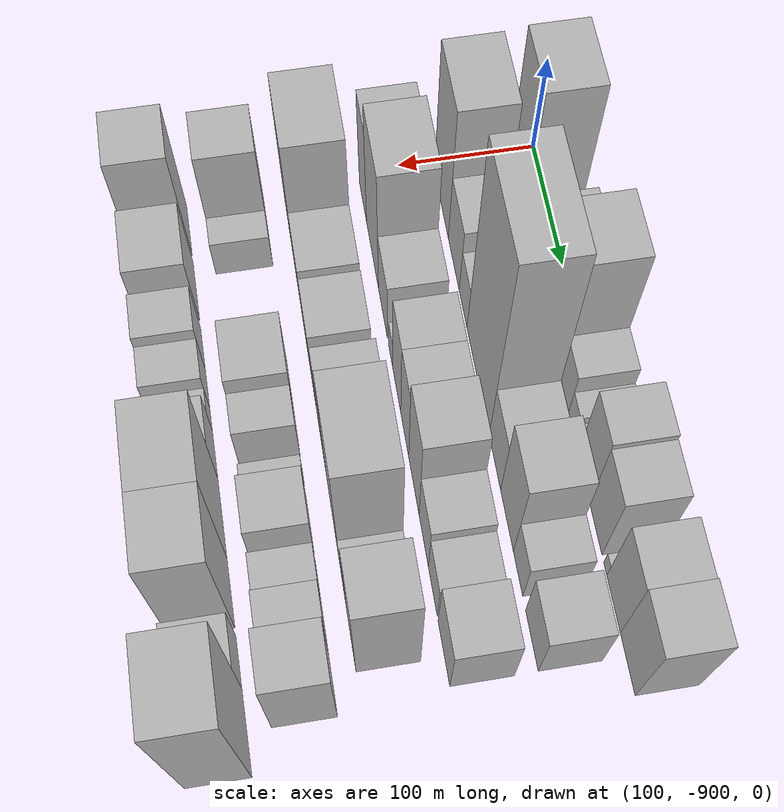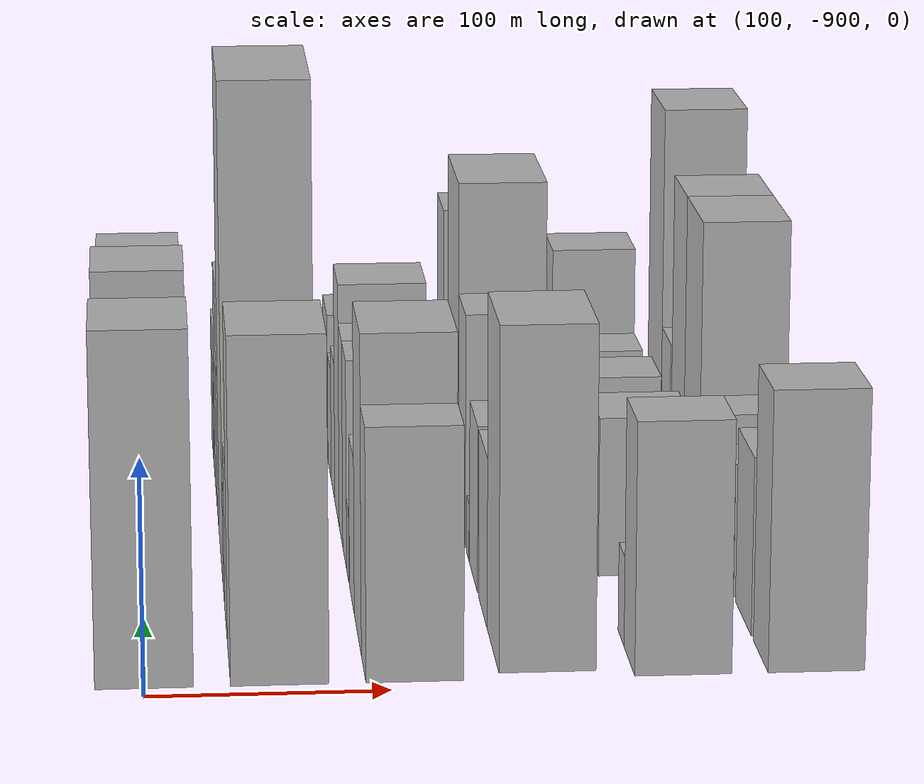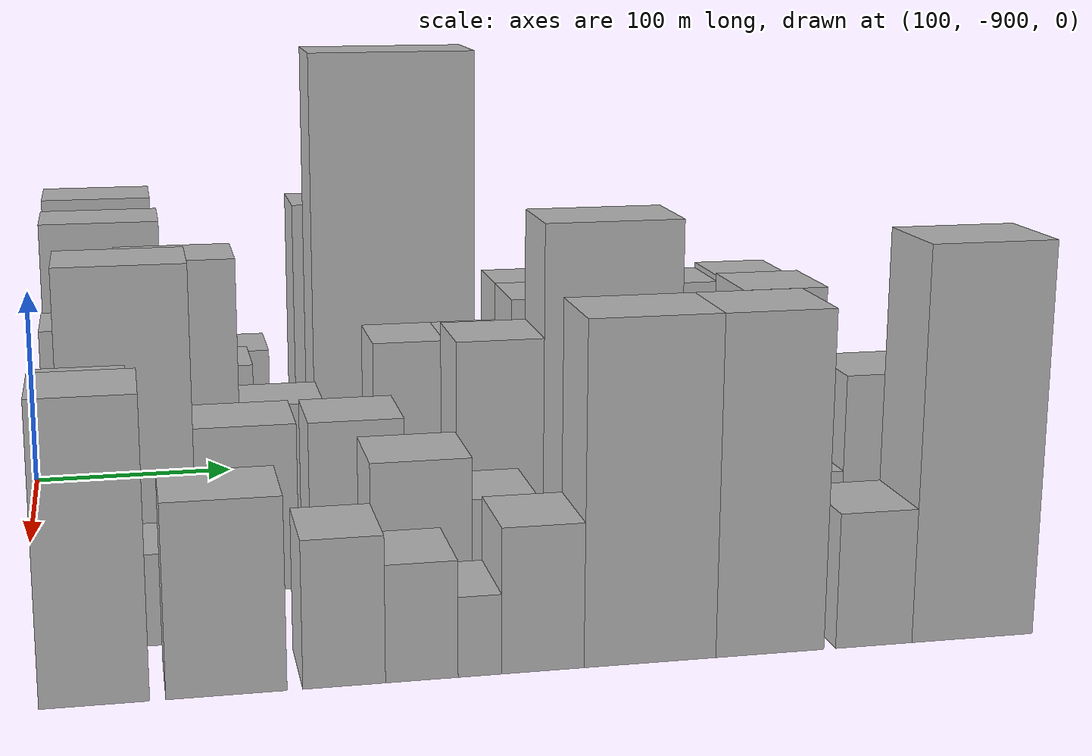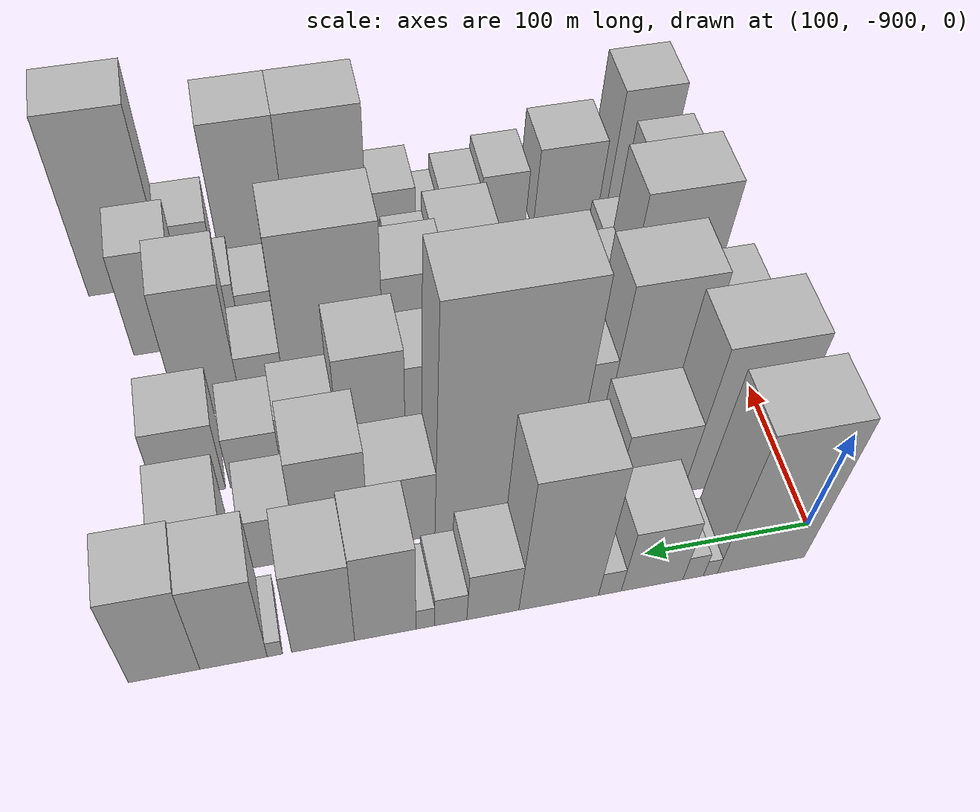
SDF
<sdf version="1.6">
 <world name="default">
  <model name="building_1">
   <static>1</static>
   <pose>100.0000 -863.5592 0 0.000000 0.000000 0.000000</pose>
   <link name="link">
    <pose>0 0 75.00 0 0 0</pose>
    <collision name="collision"><geometry><box><size>40.0000 52.8815 150.0000</size></box></geometry></collision>
    <visual name="visual">
     <cast_shadows>0</cast_shadows>
     <geometry><box><size>40.0000 52.8815 150.0000</size></box></geometry>
     <material>
      <script>
       <uri>model://HANNAS_wall/materials/scripts</uri>
       <uri>model://HANNAS_wall/materials/textures</uri>
       <name>vrc/HANNAS_wall</name>
      </script>
     </material>
    </visual>
   </link>
  </model>
  <model name="building_2">
   <static>1</static>
   <pose>100.0000 -832.8739 0 0.000000 0.000000 0.000000</pose>
   <link name="link">
    <pose>0 0 9.00 0 0 0</pose>
    <collision name="collision"><geometry><box><size>40.0000 8.4891 18.0000</size></box></geometry></collision>
    <visual name="visual">
     <cast_shadows>0</cast_shadows>
     <geometry><box><size>40.0000 8.4891 18.0000</size></box></geometry>
     <material>
      <script>
       <uri>model://HANNAS_wall/materials/scripts</uri>
       <uri>model://HANNAS_wall/materials/textures</uri>
       <name>vrc/HANNAS_wall</name>
      </script>
     </material>
    </visual>
   </link>
  </model>
  <model name="building_3">
   <static>1</static>
   <pose>100.0000 -822.4442 0 0.000000 0.000000 0.000000</pose>
   <link name="link">
    <pose>0 0 13.50 0 0 0</pose>
    <collision name="collision"><geometry><box><size>40.0000 12.3704 27.0000</size></box></geometry></collision>
    <visual name="visual">
     <cast_shadows>0</cast_shadows>
     <geometry><box><size>40.0000 12.3704 27.0000</size></box></geometry>
     <material>
      <script>
       <uri>model://HANNAS_wall/materials/scripts</uri>
       <uri>model://HANNAS_wall/materials/textures</uri>
       <name>vrc/HANNAS_wall</name>
      </script>
     </material>
    </visual>
   </link>
  </model>
  <model name="building_4">
   <static>1</static>
   <pose>100.0000 -797.8534 0 0.000000 0.000000 0.000000</pose>
   <link name="link">
    <pose>0 0 34.50 0 0 0</pose>
    <collision name="collision"><geometry><box><size>40.0000 36.8112 69.0000</size></box></geometry></collision>
    <visual name="visual">
     <cast_shadows>0</cast_shadows>
     <geometry><box><size>40.0000 36.8112 69.0000</size></box></geometry>
     <material>
      <script>
       <uri>model://HANNAS_wall/materials/scripts</uri>
       <uri>model://HANNAS_wall/materials/textures</uri>
       <name>vrc/HANNAS_wall</name>
      </script>
     </material>
    </visual>
   </link>
  </model>
  <model name="building_5">
   <static>1</static>
   <pose>100.0000 -772.7237 0 0.000000 0.000000 0.000000</pose>
   <link name="link">
    <pose>0 0 13.50 0 0 0</pose>
    <collision name="collision"><geometry><box><size>40.0000 13.4483 27.0000</size></box></geometry></collision>
    <visual name="visual">
     <cast_shadows>0</cast_shadows>
     <geometry><box><size>40.0000 13.4483 27.0000</size></box></geometry>
     <material>
      <script>
       <uri>model://HANNAS_wall/materials/scripts</uri>
       <uri>model://HANNAS_wall/materials/textures</uri>
       <name>vrc/HANNAS_wall</name>
      </script>
     </material>
    </visual>
   </link>
  </model>
  <model name="building_6">
   <static>1</static>
   <pose>100.0000 -742.6112 0 0.000000 0.000000 0.000000</pose>
   <link name="link">
    <pose>0 0 72.00 0 0 0</pose>
    <collision name="collision"><geometry><box><size>40.0000 46.7767 144.0000</size></box></geometry></collision>
    <visual name="visual">
     <cast_shadows>0</cast_shadows>
     <geometry><box><size>40.0000 46.7767 144.0000</size></box></geometry>
     <material>
      <script>
       <uri>model://HANNAS_wall/materials/scripts</uri>
       <uri>model://HANNAS_wall/materials/textures</uri>
       <name>vrc/HANNAS_wall</name>
      </script>
     </material>
    </visual>
   </link>
  </model>
  <model name="building_7">
   <static>1</static>
   <pose>100.0000 -704.1414 0 0.000000 0.000000 0.000000</pose>
   <link name="link">
    <pose>0 0 27.00 0 0 0</pose>
    <collision name="collision"><geometry><box><size>40.0000 30.1628 54.0000</size></box></geometry></collision>
    <visual name="visual">
     <cast_shadows>0</cast_shadows>
     <geometry><box><size>40.0000 30.1628 54.0000</size></box></geometry>
     <material>
      <script>
       <uri>model://HANNAS_wall/materials/scripts</uri>
       <uri>model://HANNAS_wall/materials/textures</uri>
       <name>vrc/HANNAS_wall</name>
      </script>
     </material>
    </visual>
   </link>
  </model>
  <model name="building_8">
   <static>1</static>
   <pose>100.0000 -679.7292 0 0.000000 0.000000 0.000000</pose>
   <link name="link">
    <pose>0 0 16.50 0 0 0</pose>
    <collision name="collision"><geometry><box><size>40.0000 18.6615 33.0000</size></box></geometry></collision>
    <visual name="visual">
     <cast_shadows>0</cast_shadows>
     <geometry><box><size>40.0000 18.6615 33.0000</size></box></geometry>
     <material>
      <script>
       <uri>model://HANNAS_wall/materials/scripts</uri>
       <uri>model://HANNAS_wall/materials/textures</uri>
       <name>vrc/HANNAS_wall</name>
      </script>
     </material>
    </visual>
   </link>
  </model>
  <model name="building_9">
   <static>1</static>
   <pose>100.0000 -665.0958 0 0.000000 0.000000 0.000000</pose>
   <link name="link">
    <pose>0 0 12.00 0 0 0</pose>
    <collision name="collision"><geometry><box><size>40.0000 10.6054 24.0000</size></box></geometry></collision>
    <visual name="visual">
     <cast_shadows>0</cast_shadows>
     <geometry><box><size>40.0000 10.6054 24.0000</size></box></geometry>
     <material>
      <script>
       <uri>model://HANNAS_wall/materials/scripts</uri>
       <uri>model://HANNAS_wall/materials/textures</uri>
       <name>vrc/HANNAS_wall</name>
      </script>
     </material>
    </visual>
   </link>
  </model>
  <model name="building_10">
   <static>1</static>
   <pose>100.0000 -642.4556 0 0.000000 0.000000 0.000000</pose>
   <link name="link">
    <pose>0 0 49.50 0 0 0</pose>
    <collision name="collision"><geometry><box><size>40.0000 34.6750 99.0000</size></box></geometry></collision>
    <visual name="visual">
     <cast_shadows>0</cast_shadows>
     <geometry><box><size>40.0000 34.6750 99.0000</size></box></geometry>
     <material>
      <script>
       <uri>model://HANNAS_wall/materials/scripts</uri>
       <uri>model://HANNAS_wall/materials/textures</uri>
       <name>vrc/HANNAS_wall</name>
      </script>
     </material>
    </visual>
   </link>
  </model>
  <model name="building_11">
   <static>1</static>
   <pose>100.0000 -607.3958 0 0.000000 0.000000 0.000000</pose>
   <link name="link">
    <pose>0 0 46.50 0 0 0</pose>
    <collision name="collision"><geometry><box><size>40.0000 35.4446 93.0000</size></box></geometry></collision>
    <visual name="visual">
     <cast_shadows>0</cast_shadows>
     <geometry><box><size>40.0000 35.4446 93.0000</size></box></geometry>
     <material>
      <script>
       <uri>model://HANNAS_wall/materials/scripts</uri>
       <uri>model://HANNAS_wall/materials/textures</uri>
       <name>vrc/HANNAS_wall</name>
      </script>
     </material>
    </visual>
   </link>
  </model>
  <model name="building_12">
   <static>1</static>
   <pose>100.0000 -580.3775 0 0.000000 0.000000 0.000000</pose>
   <link name="link">
    <pose>0 0 9.00 0 0 0</pose>
    <collision name="collision"><geometry><box><size>40.0000 8.5919 18.0000</size></box></geometry></collision>
    <visual name="visual">
     <cast_shadows>0</cast_shadows>
     <geometry><box><size>40.0000 8.5919 18.0000</size></box></geometry>
     <material>
      <script>
       <uri>model://HANNAS_wall/materials/scripts</uri>
       <uri>model://HANNAS_wall/materials/textures</uri>
       <name>vrc/HANNAS_wall</name>
      </script>
     </material>
    </visual>
   </link>
  </model>
  <model name="building_13">
   <static>1</static>
   <pose>100.0000 -557.4880 0 0.000000 0.000000 0.000000</pose>
   <link name="link">
    <pose>0 0 48.00 0 0 0</pose>
    <collision name="collision"><geometry><box><size>40.0000 37.1872 96.0000</size></box></geometry></collision>
    <visual name="visual">
     <cast_shadows>0</cast_shadows>
     <geometry><box><size>40.0000 37.1872 96.0000</size></box></geometry>
     <material>
      <script>
       <uri>model://HANNAS_wall/materials/scripts</uri>
       <uri>model://HANNAS_wall/materials/textures</uri>
       <name>vrc/HANNAS_wall</name>
      </script>
     </material>
    </visual>
   </link>
  </model>
  <model name="building_14">
   <static>1</static>
   <pose>100.0000 -519.3972 0 0.000000 0.000000 0.000000</pose>
   <link name="link">
    <pose>0 0 49.50 0 0 0</pose>
    <collision name="collision"><geometry><box><size>40.0000 38.9944 99.0000</size></box></geometry></collision>
    <visual name="visual">
     <cast_shadows>0</cast_shadows>
     <geometry><box><size>40.0000 38.9944 99.0000</size></box></geometry>
     <material>
      <script>
       <uri>model://HANNAS_wall/materials/scripts</uri>
       <uri>model://HANNAS_wall/materials/textures</uri>
       <name>vrc/HANNAS_wall</name>
      </script>
     </material>
    </visual>
   </link>
  </model>
  <model name="building_54">
   <static>1</static>
   <pose>155.0000 -862.2005 0 0.000000 0.000000 0.000000</pose>
   <link name="link">
    <pose>0 0 73.50 0 0 0</pose>
    <collision name="collision"><geometry><box><size>40.0000 55.5990 147.0000</size></box></geometry></collision>
    <visual name="visual">
     <cast_shadows>0</cast_shadows>
     <geometry><box><size>40.0000 55.5990 147.0000</size></box></geometry>
     <material>
      <script>
       <uri>model://HANNAS_wall/materials/scripts</uri>
       <uri>model://HANNAS_wall/materials/textures</uri>
       <name>vrc/HANNAS_wall</name>
      </script>
     </material>
    </visual>
   </link>
  </model>
  <model name="building_55">
   <static>1</static>
   <pose>155.0000 -813.0366 0 0.000000 0.000000 0.000000</pose>
   <link name="link">
    <pose>0 0 37.50 0 0 0</pose>
    <collision name="collision"><geometry><box><size>40.0000 42.7287 75.0000</size></box></geometry></collision>
    <visual name="visual">
     <cast_shadows>0</cast_shadows>
     <geometry><box><size>40.0000 42.7287 75.0000</size></box></geometry>
     <material>
      <script>
       <uri>model://HANNAS_wall/materials/scripts</uri>
       <uri>model://HANNAS_wall/materials/textures</uri>
       <name>vrc/HANNAS_wall</name>
      </script>
     </material>
    </visual>
   </link>
  </model>
  <model name="building_56">
   <static>1</static>
   <pose>155.0000 -776.8651 0 0.000000 0.000000 0.000000</pose>
   <link name="link">
    <pose>0 0 25.50 0 0 0</pose>
    <collision name="collision"><geometry><box><size>40.0000 29.6142 51.0000</size></box></geometry></collision>
    <visual name="visual">
     <cast_shadows>0</cast_shadows>
     <geometry><box><size>40.0000 29.6142 51.0000</size></box></geometry>
     <material>
      <script>
       <uri>model://HANNAS_wall/materials/scripts</uri>
       <uri>model://HANNAS_wall/materials/textures</uri>
       <name>vrc/HANNAS_wall</name>
      </script>
     </material>
    </visual>
   </link>
  </model>
  <model name="building_57">
   <static>1</static>
   <pose>155.0000 -722.0040 0 0.000000 0.000000 0.000000</pose>
   <link name="link">
    <pose>0 0 112.50 0 0 0</pose>
    <collision name="collision"><geometry><box><size>40.0000 80.1081 225.0000</size></box></geometry></collision>
    <visual name="visual">
     <cast_shadows>0</cast_shadows>
     <geometry><box><size>40.0000 80.1081 225.0000</size></box></geometry>
     <material>
      <script>
       <uri>model://HANNAS_wall/materials/scripts</uri>
       <uri>model://HANNAS_wall/materials/textures</uri>
       <name>vrc/HANNAS_wall</name>
      </script>
     </material>
    </visual>
   </link>
  </model>
  <model name="building_58">
   <static>1</static>
   <pose>155.0000 -662.4127 0 0.000000 0.000000 0.000000</pose>
   <link name="link">
    <pose>0 0 36.00 0 0 0</pose>
    <collision name="collision"><geometry><box><size>40.0000 39.0746 72.0000</size></box></geometry></collision>
    <visual name="visual">
     <cast_shadows>0</cast_shadows>
     <geometry><box><size>40.0000 39.0746 72.0000</size></box></geometry>
     <material>
      <script>
       <uri>model://HANNAS_wall/materials/scripts</uri>
       <uri>model://HANNAS_wall/materials/textures</uri>
       <name>vrc/HANNAS_wall</name>
      </script>
     </material>
    </visual>
   </link>
  </model>
  <model name="building_59">
   <static>1</static>
   <pose>155.0000 -621.8939 0 0.000000 0.000000 0.000000</pose>
   <link name="link">
    <pose>0 0 54.00 0 0 0</pose>
    <collision name="collision"><geometry><box><size>40.0000 41.9629 108.0000</size></box></geometry></collision>
    <visual name="visual">
     <cast_shadows>0</cast_shadows>
     <geometry><box><size>40.0000 41.9629 108.0000</size></box></geometry>
     <material>
      <script>
       <uri>model://HANNAS_wall/materials/scripts</uri>
       <uri>model://HANNAS_wall/materials/textures</uri>
       <name>vrc/HANNAS_wall</name>
      </script>
     </material>
    </visual>
   </link>
  </model>
  <model name="building_60">
   <static>1</static>
   <pose>155.0000 -586.1257 0 0.000000 0.000000 0.000000</pose>
   <link name="link">
    <pose>0 0 27.00 0 0 0</pose>
    <collision name="collision"><geometry><box><size>40.0000 29.5734 54.0000</size></box></geometry></collision>
    <visual name="visual">
     <cast_shadows>0</cast_shadows>
     <geometry><box><size>40.0000 29.5734 54.0000</size></box></geometry>
     <material>
      <script>
       <uri>model://HANNAS_wall/materials/scripts</uri>
       <uri>model://HANNAS_wall/materials/textures</uri>
       <name>vrc/HANNAS_wall</name>
      </script>
     </material>
    </visual>
   </link>
  </model>
  <model name="building_61">
   <static>1</static>
   <pose>155.0000 -543.0832 0 0.000000 0.000000 0.000000</pose>
   <link name="link">
    <pose>0 0 33.00 0 0 0</pose>
    <collision name="collision"><geometry><box><size>40.0000 38.5117 66.0000</size></box></geometry></collision>
    <visual name="visual">
     <cast_shadows>0</cast_shadows>
     <geometry><box><size>40.0000 38.5117 66.0000</size></box></geometry>
     <material>
      <script>
       <uri>model://HANNAS_wall/materials/scripts</uri>
       <uri>model://HANNAS_wall/materials/textures</uri>
       <name>vrc/HANNAS_wall</name>
      </script>
     </material>
    </visual>
   </link>
  </model>
  <model name="building_105">
   <static>1</static>
   <pose>210.0000 -873.1310 0 0.000000 0.000000 0.000000</pose>
   <link name="link">
    <pose>0 0 54.00 0 0 0</pose>
    <collision name="collision"><geometry><box><size>40.0000 33.7380 108.0000</size></box></geometry></collision>
    <visual name="visual">
     <cast_shadows>0</cast_shadows>
     <geometry><box><size>40.0000 33.7380 108.0000</size></box></geometry>
     <material>
      <script>
       <uri>model://HANNAS_wall/materials/scripts</uri>
       <uri>model://HANNAS_wall/materials/textures</uri>
       <name>vrc/HANNAS_wall</name>
      </script>
     </material>
    </visual>
   </link>
  </model>
  <model name="building_106">
   <static>1</static>
   <pose>210.0000 -829.2123 0 0.000000 0.000000 0.000000</pose>
   <link name="link">
    <pose>0 0 69.00 0 0 0</pose>
    <collision name="collision"><geometry><box><size>40.0000 54.0993 138.0000</size></box></geometry></collision>
    <visual name="visual">
     <cast_shadows>0</cast_shadows>
     <geometry><box><size>40.0000 54.0993 138.0000</size></box></geometry>
     <material>
      <script>
       <uri>model://HANNAS_wall/materials/scripts</uri>
       <uri>model://HANNAS_wall/materials/textures</uri>
       <name>vrc/HANNAS_wall</name>
      </script>
     </material>
    </visual>
   </link>
  </model>
  <model name="building_107">
   <static>1</static>
   <pose>210.0000 -782.6339 0 0.000000 0.000000 0.000000</pose>
   <link name="link">
    <pose>0 0 34.50 0 0 0</pose>
    <collision name="collision"><geometry><box><size>40.0000 39.0576 69.0000</size></box></geometry></collision>
    <visual name="visual">
     <cast_shadows>0</cast_shadows>
     <geometry><box><size>40.0000 39.0576 69.0000</size></box></geometry>
     <material>
      <script>
       <uri>model://HANNAS_wall/materials/scripts</uri>
       <uri>model://HANNAS_wall/materials/textures</uri>
       <name>vrc/HANNAS_wall</name>
      </script>
     </material>
    </visual>
   </link>
  </model>
  <model name="building_108">
   <static>1</static>
   <pose>210.0000 -749.1240 0 0.000000 0.000000 0.000000</pose>
   <link name="link">
    <pose>0 0 16.50 0 0 0</pose>
    <collision name="collision"><geometry><box><size>40.0000 17.9621 33.0000</size></box></geometry></collision>
    <visual name="visual">
     <cast_shadows>0</cast_shadows>
     <geometry><box><size>40.0000 17.9621 33.0000</size></box></geometry>
     <material>
      <script>
       <uri>model://HANNAS_wall/materials/scripts</uri>
       <uri>model://HANNAS_wall/materials/textures</uri>
       <name>vrc/HANNAS_wall</name>
      </script>
     </material>
    </visual>
   </link>
  </model>
  <model name="building_109">
   <static>1</static>
   <pose>210.0000 -723.3912 0 0.000000 0.000000 0.000000</pose>
   <link name="link">
    <pose>0 0 48.00 0 0 0</pose>
    <collision name="collision"><geometry><box><size>40.0000 33.5036 96.0000</size></box></geometry></collision>
    <visual name="visual">
     <cast_shadows>0</cast_shadows>
     <geometry><box><size>40.0000 33.5036 96.0000</size></box></geometry>
     <material>
      <script>
       <uri>model://HANNAS_wall/materials/scripts</uri>
       <uri>model://HANNAS_wall/materials/textures</uri>
       <name>vrc/HANNAS_wall</name>
      </script>
     </material>
    </visual>
   </link>
  </model>
  <model name="building_110">
   <static>1</static>
   <pose>210.0000 -690.7032 0 0.000000 0.000000 0.000000</pose>
   <link name="link">
    <pose>0 0 48.00 0 0 0</pose>
    <collision name="collision"><geometry><box><size>40.0000 31.8725 96.0000</size></box></geometry></collision>
    <visual name="visual">
     <cast_shadows>0</cast_shadows>
     <geometry><box><size>40.0000 31.8725 96.0000</size></box></geometry>
     <material>
      <script>
       <uri>model://HANNAS_wall/materials/scripts</uri>
       <uri>model://HANNAS_wall/materials/textures</uri>
       <name>vrc/HANNAS_wall</name>
      </script>
     </material>
    </visual>
   </link>
  </model>
  <model name="building_111">
   <static>1</static>
   <pose>210.0000 -654.6069 0 0.000000 0.000000 0.000000</pose>
   <link name="link">
    <pose>0 0 57.00 0 0 0</pose>
    <collision name="collision"><geometry><box><size>40.0000 40.3200 114.0000</size></box></geometry></collision>
    <visual name="visual">
     <cast_shadows>0</cast_shadows>
     <geometry><box><size>40.0000 40.3200 114.0000</size></box></geometry>
     <material>
      <script>
       <uri>model://HANNAS_wall/materials/scripts</uri>
       <uri>model://HANNAS_wall/materials/textures</uri>
       <name>vrc/HANNAS_wall</name>
      </script>
     </material>
    </visual>
   </link>
  </model>
  <model name="building_112">
   <static>1</static>
   <pose>210.0000 -616.8641 0 0.000000 0.000000 0.000000</pose>
   <link name="link">
    <pose>0 0 33.00 0 0 0</pose>
    <collision name="collision"><geometry><box><size>40.0000 35.1656 66.0000</size></box></geometry></collision>
    <visual name="visual">
     <cast_shadows>0</cast_shadows>
     <geometry><box><size>40.0000 35.1656 66.0000</size></box></geometry>
     <material>
      <script>
       <uri>model://HANNAS_wall/materials/scripts</uri>
       <uri>model://HANNAS_wall/materials/textures</uri>
       <name>vrc/HANNAS_wall</name>
      </script>
     </material>
    </visual>
   </link>
  </model>
  <model name="building_113">
   <static>1</static>
   <pose>210.0000 -583.3590 0 0.000000 0.000000 0.000000</pose>
   <link name="link">
    <pose>0 0 27.00 0 0 0</pose>
    <collision name="collision"><geometry><box><size>40.0000 31.8446 54.0000</size></box></geometry></collision>
    <visual name="visual">
     <cast_shadows>0</cast_shadows>
     <geometry><box><size>40.0000 31.8446 54.0000</size></box></geometry>
     <material>
      <script>
       <uri>model://HANNAS_wall/materials/scripts</uri>
       <uri>model://HANNAS_wall/materials/textures</uri>
       <name>vrc/HANNAS_wall</name>
      </script>
     </material>
    </visual>
   </link>
  </model>
  <model name="building_114">
   <static>1</static>
   <pose>210.0000 -543.9033 0 0.000000 0.000000 0.000000</pose>
   <link name="link">
    <pose>0 0 36.00 0 0 0</pose>
    <collision name="collision"><geometry><box><size>40.0000 41.0667 72.0000</size></box></geometry></collision>
    <visual name="visual">
     <cast_shadows>0</cast_shadows>
     <geometry><box><size>40.0000 41.0667 72.0000</size></box></geometry>
     <material>
      <script>
       <uri>model://HANNAS_wall/materials/scripts</uri>
       <uri>model://HANNAS_wall/materials/textures</uri>
       <name>vrc/HANNAS_wall</name>
      </script>
     </material>
    </visual>
   </link>
  </model>
  <model name="building_157">
   <static>1</static>
   <pose>265.0000 -853.7727 0 0.000000 0.000000 0.000000</pose>
   <link name="link">
    <pose>0 0 73.50 0 0 0</pose>
    <collision name="collision"><geometry><box><size>40.0000 56.4547 147.0000</size></box></geometry></collision>
    <visual name="visual">
     <cast_shadows>0</cast_shadows>
     <geometry><box><size>40.0000 56.4547 147.0000</size></box></geometry>
     <material>
      <script>
       <uri>model://HANNAS_wall/materials/scripts</uri>
       <uri>model://HANNAS_wall/materials/textures</uri>
       <name>vrc/HANNAS_wall</name>
      </script>
     </material>
    </visual>
   </link>
  </model>
  <model name="building_158">
   <static>1</static>
   <pose>265.0000 -803.4010 0 0.000000 0.000000 0.000000</pose>
   <link name="link">
    <pose>0 0 37.50 0 0 0</pose>
    <collision name="collision"><geometry><box><size>40.0000 44.2886 75.0000</size></box></geometry></collision>
    <visual name="visual">
     <cast_shadows>0</cast_shadows>
     <geometry><box><size>40.0000 44.2886 75.0000</size></box></geometry>
     <material>
      <script>
       <uri>model://HANNAS_wall/materials/scripts</uri>
       <uri>model://HANNAS_wall/materials/textures</uri>
       <name>vrc/HANNAS_wall</name>
      </script>
     </material>
    </visual>
   </link>
  </model>
  <model name="building_159">
   <static>1</static>
   <pose>265.0000 -755.1644 0 0.000000 0.000000 0.000000</pose>
   <link name="link">
    <pose>0 0 37.50 0 0 0</pose>
    <collision name="collision"><geometry><box><size>40.0000 42.1847 75.0000</size></box></geometry></collision>
    <visual name="visual">
     <cast_shadows>0</cast_shadows>
     <geometry><box><size>40.0000 42.1847 75.0000</size></box></geometry>
     <material>
      <script>
       <uri>model://HANNAS_wall/materials/scripts</uri>
       <uri>model://HANNAS_wall/materials/textures</uri>
       <name>vrc/HANNAS_wall</name>
      </script>
     </material>
    </visual>
   </link>
  </model>
  <model name="building_160">
   <static>1</static>
   <pose>265.0000 -725.0022 0 0.000000 0.000000 0.000000</pose>
   <link name="link">
    <pose>0 0 13.50 0 0 0</pose>
    <collision name="collision"><geometry><box><size>40.0000 12.1397 27.0000</size></box></geometry></collision>
    <visual name="visual">
     <cast_shadows>0</cast_shadows>
     <geometry><box><size>40.0000 12.1397 27.0000</size></box></geometry>
     <material>
      <script>
       <uri>model://HANNAS_wall/materials/scripts</uri>
       <uri>model://HANNAS_wall/materials/textures</uri>
       <name>vrc/HANNAS_wall</name>
      </script>
     </material>
    </visual>
   </link>
  </model>
  <model name="building_161">
   <static>1</static>
   <pose>265.0000 -691.2650 0 0.000000 0.000000 0.000000</pose>
   <link name="link">
    <pose>0 0 54.00 0 0 0</pose>
    <collision name="collision"><geometry><box><size>40.0000 39.3346 108.0000</size></box></geometry></collision>
    <visual name="visual">
     <cast_shadows>0</cast_shadows>
     <geometry><box><size>40.0000 39.3346 108.0000</size></box></geometry>
     <material>
      <script>
       <uri>model://HANNAS_wall/materials/scripts</uri>
       <uri>model://HANNAS_wall/materials/textures</uri>
       <name>vrc/HANNAS_wall</name>
      </script>
     </material>
    </visual>
   </link>
  </model>
  <model name="building_162">
   <static>1</static>
   <pose>265.0000 -640.1143 0 0.000000 0.000000 0.000000</pose>
   <link name="link">
    <pose>0 0 79.50 0 0 0</pose>
    <collision name="collision"><geometry><box><size>40.0000 62.9667 159.0000</size></box></geometry></collision>
    <visual name="visual">
     <cast_shadows>0</cast_shadows>
     <geometry><box><size>40.0000 62.9667 159.0000</size></box></geometry>
     <material>
      <script>
       <uri>model://HANNAS_wall/materials/scripts</uri>
       <uri>model://HANNAS_wall/materials/textures</uri>
       <name>vrc/HANNAS_wall</name>
      </script>
     </material>
    </visual>
   </link>
  </model>
  <model name="building_163">
   <static>1</static>
   <pose>265.0000 -594.6473 0 0.000000 0.000000 0.000000</pose>
   <link name="link">
    <pose>0 0 27.00 0 0 0</pose>
    <collision name="collision"><geometry><box><size>40.0000 27.9673 54.0000</size></box></geometry></collision>
    <visual name="visual">
     <cast_shadows>0</cast_shadows>
     <geometry><box><size>40.0000 27.9673 54.0000</size></box></geometry>
     <material>
      <script>
       <uri>model://HANNAS_wall/materials/scripts</uri>
       <uri>model://HANNAS_wall/materials/textures</uri>
       <name>vrc/HANNAS_wall</name>
      </script>
     </material>
    </visual>
   </link>
  </model>
  <model name="building_164">
   <static>1</static>
   <pose>265.0000 -560.9533 0 0.000000 0.000000 0.000000</pose>
   <link name="link">
    <pose>0 0 63.00 0 0 0</pose>
    <collision name="collision"><geometry><box><size>40.0000 39.4207 126.0000</size></box></geometry></collision>
    <visual name="visual">
     <cast_shadows>0</cast_shadows>
     <geometry><box><size>40.0000 39.4207 126.0000</size></box></geometry>
     <material>
      <script>
       <uri>model://HANNAS_wall/materials/scripts</uri>
       <uri>model://HANNAS_wall/materials/textures</uri>
       <name>vrc/HANNAS_wall</name>
      </script>
     </material>
    </visual>
   </link>
  </model>
  <model name="building_206">
   <static>1</static>
   <pose>320.0000 -871.4512 0 0.000000 0.000000 0.000000</pose>
   <link name="link">
    <pose>0 0 54.00 0 0 0</pose>
    <collision name="collision"><geometry><box><size>40.0000 37.0976 108.0000</size></box></geometry></collision>
    <visual name="visual">
     <cast_shadows>0</cast_shadows>
     <geometry><box><size>40.0000 37.0976 108.0000</size></box></geometry>
     <material>
      <script>
       <uri>model://HANNAS_wall/materials/scripts</uri>
       <uri>model://HANNAS_wall/materials/textures</uri>
       <name>vrc/HANNAS_wall</name>
      </script>
     </material>
    </visual>
   </link>
  </model>
  <model name="building_207">
   <static>1</static>
   <pose>320.0000 -842.1522 0 0.000000 0.000000 0.000000</pose>
   <link name="link">
    <pose>0 0 19.50 0 0 0</pose>
    <collision name="collision"><geometry><box><size>40.0000 21.5004 39.0000</size></box></geometry></collision>
    <visual name="visual">
     <cast_shadows>0</cast_shadows>
     <geometry><box><size>40.0000 21.5004 39.0000</size></box></geometry>
     <material>
      <script>
       <uri>model://HANNAS_wall/materials/scripts</uri>
       <uri>model://HANNAS_wall/materials/textures</uri>
       <name>vrc/HANNAS_wall</name>
      </script>
     </material>
    </visual>
   </link>
  </model>
  <model name="building_208">
   <static>1</static>
   <pose>320.0000 -735.5219 0 0.000000 0.000000 0.000000</pose>
   <link name="link">
    <pose>0 0 36.00 0 0 0</pose>
    <collision name="collision"><geometry><box><size>40.0000 42.5867 72.0000</size></box></geometry></collision>
    <visual name="visual">
     <cast_shadows>0</cast_shadows>
     <geometry><box><size>40.0000 42.5867 72.0000</size></box></geometry>
     <material>
      <script>
       <uri>model://HANNAS_wall/materials/scripts</uri>
       <uri>model://HANNAS_wall/materials/textures</uri>
       <name>vrc/HANNAS_wall</name>
      </script>
     </material>
    </visual>
   </link>
  </model>
  <model name="building_209">
   <static>1</static>
   <pose>320.0000 -700.3505 0 0.000000 0.000000 0.000000</pose>
   <link name="link">
    <pose>0 0 27.00 0 0 0</pose>
    <collision name="collision"><geometry><box><size>40.0000 27.7561 54.0000</size></box></geometry></collision>
    <visual name="visual">
     <cast_shadows>0</cast_shadows>
     <geometry><box><size>40.0000 27.7561 54.0000</size></box></geometry>
     <material>
      <script>
       <uri>model://HANNAS_wall/materials/scripts</uri>
       <uri>model://HANNAS_wall/materials/textures</uri>
       <name>vrc/HANNAS_wall</name>
      </script>
     </material>
    </visual>
   </link>
  </model>
  <model name="building_210">
   <static>1</static>
   <pose>320.0000 -671.6778 0 0.000000 0.000000 0.000000</pose>
   <link name="link">
    <pose>0 0 13.50 0 0 0</pose>
    <collision name="collision"><geometry><box><size>40.0000 11.5894 27.0000</size></box></geometry></collision>
    <visual name="visual">
     <cast_shadows>0</cast_shadows>
     <geometry><box><size>40.0000 11.5894 27.0000</size></box></geometry>
     <material>
      <script>
       <uri>model://HANNAS_wall/materials/scripts</uri>
       <uri>model://HANNAS_wall/materials/textures</uri>
       <name>vrc/HANNAS_wall</name>
      </script>
     </material>
    </visual>
   </link>
  </model>
  <model name="building_211">
   <static>1</static>
   <pose>320.0000 -637.3627 0 0.000000 0.000000 0.000000</pose>
   <link name="link">
    <pose>0 0 31.50 0 0 0</pose>
    <collision name="collision"><geometry><box><size>40.0000 37.0408 63.0000</size></box></geometry></collision>
    <visual name="visual">
     <cast_shadows>0</cast_shadows>
     <geometry><box><size>40.0000 37.0408 63.0000</size></box></geometry>
     <material>
      <script>
       <uri>model://HANNAS_wall/materials/scripts</uri>
       <uri>model://HANNAS_wall/materials/textures</uri>
       <name>vrc/HANNAS_wall</name>
      </script>
     </material>
    </visual>
   </link>
  </model>
  <model name="building_212">
   <static>1</static>
   <pose>320.0000 -599.4641 0 0.000000 0.000000 0.000000</pose>
   <link name="link">
    <pose>0 0 22.50 0 0 0</pose>
    <collision name="collision"><geometry><box><size>40.0000 26.7563 45.0000</size></box></geometry></collision>
    <visual name="visual">
     <cast_shadows>0</cast_shadows>
     <geometry><box><size>40.0000 26.7563 45.0000</size></box></geometry>
     <material>
      <script>
       <uri>model://HANNAS_wall/materials/scripts</uri>
       <uri>model://HANNAS_wall/materials/textures</uri>
       <name>vrc/HANNAS_wall</name>
      </script>
     </material>
    </visual>
   </link>
  </model>
  <model name="building_213">
   <static>1</static>
   <pose>320.0000 -569.3208 0 0.000000 0.000000 0.000000</pose>
   <link name="link">
    <pose>0 0 28.50 0 0 0</pose>
    <collision name="collision"><geometry><box><size>40.0000 33.5302 57.0000</size></box></geometry></collision>
    <visual name="visual">
     <cast_shadows>0</cast_shadows>
     <geometry><box><size>40.0000 33.5302 57.0000</size></box></geometry>
     <material>
      <script>
       <uri>model://HANNAS_wall/materials/scripts</uri>
       <uri>model://HANNAS_wall/materials/textures</uri>
       <name>vrc/HANNAS_wall</name>
      </script>
     </material>
    </visual>
   </link>
  </model>
  <model name="building_214">
   <static>1</static>
   <pose>320.0000 -534.3647 0 0.000000 0.000000 0.000000</pose>
   <link name="link">
    <pose>0 0 49.50 0 0 0</pose>
    <collision name="collision"><geometry><box><size>40.0000 36.3820 99.0000</size></box></geometry></collision>
    <visual name="visual">
     <cast_shadows>0</cast_shadows>
     <geometry><box><size>40.0000 36.3820 99.0000</size></box></geometry>
     <material>
      <script>
       <uri>model://HANNAS_wall/materials/scripts</uri>
       <uri>model://HANNAS_wall/materials/textures</uri>
       <name>vrc/HANNAS_wall</name>
      </script>
     </material>
    </visual>
   </link>
  </model>
  <model name="building_252">
   <static>1</static>
   <pose>375.0000 -869.4703 0 0.000000 0.000000 0.000000</pose>
   <link name="link">
    <pose>0 0 60.00 0 0 0</pose>
    <collision name="collision"><geometry><box><size>40.0000 41.0595 120.0000</size></box></geometry></collision>
    <visual name="visual">
     <cast_shadows>0</cast_shadows>
     <geometry><box><size>40.0000 41.0595 120.0000</size></box></geometry>
     <material>
      <script>
       <uri>model://HANNAS_wall/materials/scripts</uri>
       <uri>model://HANNAS_wall/materials/textures</uri>
       <name>vrc/HANNAS_wall</name>
      </script>
     </material>
    </visual>
   </link>
  </model>
  <model name="building_253">
   <static>1</static>
   <pose>375.0000 -819.9438 0 0.000000 0.000000 0.000000</pose>
   <link name="link">
    <pose>0 0 39.00 0 0 0</pose>
    <collision name="collision"><geometry><box><size>40.0000 45.9935 78.0000</size></box></geometry></collision>
    <visual name="visual">
     <cast_shadows>0</cast_shadows>
     <geometry><box><size>40.0000 45.9935 78.0000</size></box></geometry>
     <material>
      <script>
       <uri>model://HANNAS_wall/materials/scripts</uri>
       <uri>model://HANNAS_wall/materials/textures</uri>
       <name>vrc/HANNAS_wall</name>
      </script>
     </material>
    </visual>
   </link>
  </model>
  <model name="building_254">
   <static>1</static>
   <pose>375.0000 -774.9193 0 0.000000 0.000000 0.000000</pose>
   <link name="link">
    <pose>0 0 30.00 0 0 0</pose>
    <collision name="collision"><geometry><box><size>40.0000 32.0554 60.0000</size></box></geometry></collision>
    <visual name="visual">
     <cast_shadows>0</cast_shadows>
     <geometry><box><size>40.0000 32.0554 60.0000</size></box></geometry>
     <material>
      <script>
       <uri>model://HANNAS_wall/materials/scripts</uri>
       <uri>model://HANNAS_wall/materials/textures</uri>
       <name>vrc/HANNAS_wall</name>
      </script>
     </material>
    </visual>
   </link>
  </model>
  <model name="building_255">
   <static>1</static>
   <pose>375.0000 -744.6140 0 0.000000 0.000000 0.000000</pose>
   <link name="link">
    <pose>0 0 24.00 0 0 0</pose>
    <collision name="collision"><geometry><box><size>40.0000 28.5552 48.0000</size></box></geometry></collision>
    <visual name="visual">
     <cast_shadows>0</cast_shadows>
     <geometry><box><size>40.0000 28.5552 48.0000</size></box></geometry>
     <material>
      <script>
       <uri>model://HANNAS_wall/materials/scripts</uri>
       <uri>model://HANNAS_wall/materials/textures</uri>
       <name>vrc/HANNAS_wall</name>
      </script>
     </material>
    </visual>
   </link>
  </model>
  <model name="building_256">
   <static>1</static>
   <pose>375.0000 -721.7021 0 0.000000 0.000000 0.000000</pose>
   <link name="link">
    <pose>0 0 16.50 0 0 0</pose>
    <collision name="collision"><geometry><box><size>40.0000 17.2684 33.0000</size></box></geometry></collision>
    <visual name="visual">
     <cast_shadows>0</cast_shadows>
     <geometry><box><size>40.0000 17.2684 33.0000</size></box></geometry>
     <material>
      <script>
       <uri>model://HANNAS_wall/materials/scripts</uri>
       <uri>model://HANNAS_wall/materials/textures</uri>
       <name>vrc/HANNAS_wall</name>
      </script>
     </material>
    </visual>
   </link>
  </model>
  <model name="building_257">
   <static>1</static>
   <pose>375.0000 -696.4574 0 0.000000 0.000000 0.000000</pose>
   <link name="link">
    <pose>0 0 30.00 0 0 0</pose>
    <collision name="collision"><geometry><box><size>40.0000 33.2211 60.0000</size></box></geometry></collision>
    <visual name="visual">
     <cast_shadows>0</cast_shadows>
     <geometry><box><size>40.0000 33.2211 60.0000</size></box></geometry>
     <material>
      <script>
       <uri>model://HANNAS_wall/materials/scripts</uri>
       <uri>model://HANNAS_wall/materials/textures</uri>
       <name>vrc/HANNAS_wall</name>
      </script>
     </material>
    </visual>
   </link>
  </model>
  <model name="building_258">
   <static>1</static>
   <pose>375.0000 -652.7094 0 0.000000 0.000000 0.000000</pose>
   <link name="link">
    <pose>0 0 70.50 0 0 0</pose>
    <collision name="collision"><geometry><box><size>40.0000 54.2748 141.0000</size></box></geometry></collision>
    <visual name="visual">
     <cast_shadows>0</cast_shadows>
     <geometry><box><size>40.0000 54.2748 141.0000</size></box></geometry>
     <material>
      <script>
       <uri>model://HANNAS_wall/materials/scripts</uri>
       <uri>model://HANNAS_wall/materials/textures</uri>
       <name>vrc/HANNAS_wall</name>
      </script>
     </material>
    </visual>
   </link>
  </model>
  <model name="building_259">
   <static>1</static>
   <pose>375.0000 -602.7993 0 0.000000 0.000000 0.000000</pose>
   <link name="link">
    <pose>0 0 70.50 0 0 0</pose>
    <collision name="collision"><geometry><box><size>40.0000 45.5453 141.0000</size></box></geometry></collision>
    <visual name="visual">
     <cast_shadows>0</cast_shadows>
     <geometry><box><size>40.0000 45.5453 141.0000</size></box></geometry>
     <material>
      <script>
       <uri>model://HANNAS_wall/materials/scripts</uri>
       <uri>model://HANNAS_wall/materials/textures</uri>
       <name>vrc/HANNAS_wall</name>
      </script>
     </material>
    </visual>
   </link>
  </model>
  <model name="building_260">
   <static>1</static>
   <pose>375.0000 -558.6149 0 0.000000 0.000000 0.000000</pose>
   <link name="link">
    <pose>0 0 28.50 0 0 0</pose>
    <collision name="collision"><geometry><box><size>40.0000 32.8234 57.0000</size></box></geometry></collision>
    <visual name="visual">
     <cast_shadows>0</cast_shadows>
     <geometry><box><size>40.0000 32.8234 57.0000</size></box></geometry>
     <material>
      <script>
       <uri>model://HANNAS_wall/materials/scripts</uri>
       <uri>model://HANNAS_wall/materials/textures</uri>
       <name>vrc/HANNAS_wall</name>
      </script>
     </material>
    </visual>
   </link>
  </model>
  <model name="building_261">
   <static>1</static>
   <pose>375.0000 -515.7492 0 0.000000 0.000000 0.000000</pose>
   <link name="link">
    <pose>0 0 82.50 0 0 0</pose>
    <collision name="collision"><geometry><box><size>40.0000 52.9080 165.0000</size></box></geometry></collision>
    <visual name="visual">
     <cast_shadows>0</cast_shadows>
     <geometry><box><size>40.0000 52.9080 165.0000</size></box></geometry>
     <material>
      <script>
       <uri>model://HANNAS_wall/materials/scripts</uri>
       <uri>model://HANNAS_wall/materials/textures</uri>
       <name>vrc/HANNAS_wall</name>
      </script>
     </material>
    </visual>
   </link>
  </model>
 </world>
</sdf>
